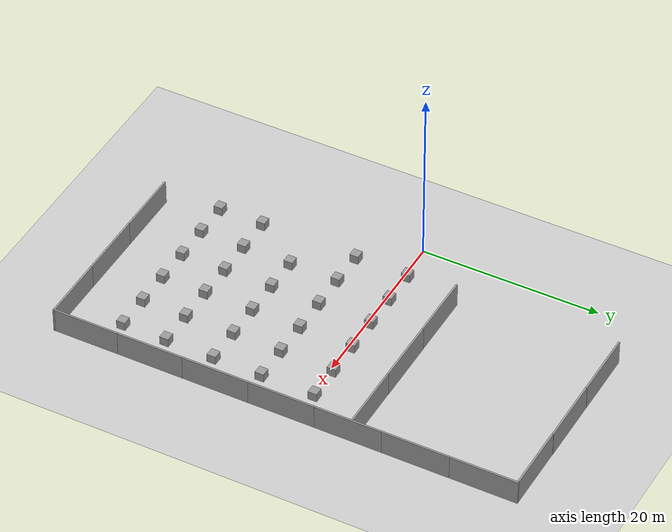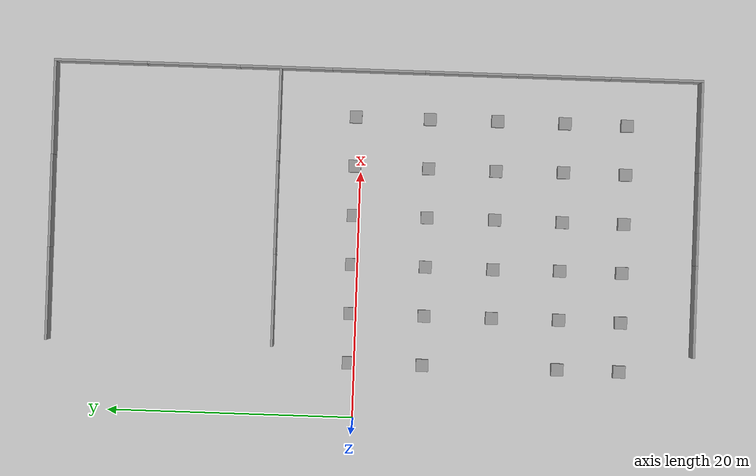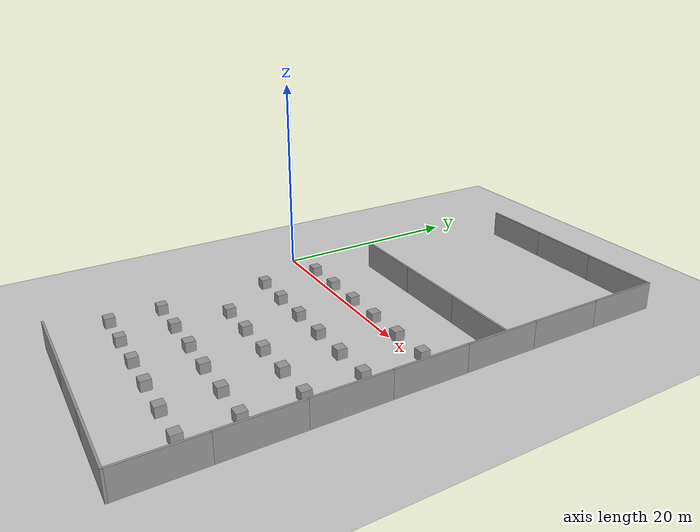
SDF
<sdf version="1.6">
 <world name="default">
  <model name="ground_plane">
   <static>1</static>
   <link name="link">
    <collision name="collision">
     <geometry><plane><normal>0 0 1</normal><size>100 100</size></plane></geometry>
     <surface>
      <contact><collide_bitmask>65535</collide_bitmask></contact>
      <friction><ode><mu>100</mu><mu2>50</mu2></ode></friction>
     </surface>
    </collision>
    <visual name="visual">
     <cast_shadows>0</cast_shadows>
     <geometry><plane><normal>0 0 1</normal><size>100 100</size></plane></geometry>
     <material>
      <script><uri>file://media/materials/scripts/gazebo.material</uri><name>Gazebo/Grey</name></script>
     </material>
    </visual>
   </link>
  </model>
  <model name="grey_wall_0">
   <static>1</static>
   <link name="link">
    <pose>0 0 1.4 0 -0 0</pose>
    <collision name="collision"><geometry><box><size>7.5 0.2 2.8</size></box></geometry></collision>
    <visual name="visual">
     <cast_shadows>0</cast_shadows>
     <geometry><box><size>7.5 0.2 2.8</size></box></geometry>
     <material>
      <script>
       <uri>model://grey_wall/materials/scripts</uri>
       <uri>model://grey_wall/materials/textures</uri>
       <name>vrc/grey_wall</name>
      </script>
     </material>
    </visual>
   </link>
   <pose>9.38698 24.904 0 0 -0 0</pose>
  </model>
  <model name="grey_wall_0_clone">
   <static>1</static>
   <link name="link">
    <pose>0 0 1.4 0 -0 0</pose>
    <collision name="collision"><geometry><box><size>7.5 0.2 2.8</size></box></geometry></collision>
    <visual name="visual">
     <cast_shadows>0</cast_shadows>
     <geometry><box><size>7.5 0.2 2.8</size></box></geometry>
     <material>
      <script>
       <uri>model://grey_wall/materials/scripts</uri>
       <uri>model://grey_wall/materials/textures</uri>
       <name>vrc/grey_wall</name>
      </script>
     </material>
    </visual>
   </link>
   <pose>16.8624 24.894 0 0 -0 0</pose>
  </model>
  <model name="grey_wall_0_clone_0">
   <static>1</static>
   <link name="link">
    <pose>0 0 1.4 0 -0 0</pose>
    <collision name="collision"><geometry><box><size>7.5 0.2 2.8</size></box></geometry></collision>
    <visual name="visual">
     <cast_shadows>0</cast_shadows>
     <geometry><box><size>7.5 0.2 2.8</size></box></geometry>
     <material>
      <script>
       <uri>model://grey_wall/materials/scripts</uri>
       <uri>model://grey_wall/materials/textures</uri>
       <name>vrc/grey_wall</name>
      </script>
     </material>
    </visual>
   </link>
   <pose>24.3535 24.8723 0 0 -0 0</pose>
  </model>
  <model name="grey_wall_0_clone_4_clone_5">
   <static>1</static>
   <link name="link">
    <pose>0 0 1.4 0 -0 0</pose>
    <collision name="collision"><geometry><box><size>7.5 0.2 2.8</size></box></geometry></collision>
    <visual name="visual">
     <cast_shadows>0</cast_shadows>
     <geometry><box><size>7.5 0.2 2.8</size></box></geometry>
     <material>
      <script>
       <uri>model://grey_wall/materials/scripts</uri>
       <uri>model://grey_wall/materials/textures</uri>
       <name>vrc/grey_wall</name>
      </script>
     </material>
    </visual>
   </link>
   <pose>28.2061 21.2247 0 0 -0 1.57</pose>
  </model>
  <model name="grey_wall_0_clone_4_clone_6">
   <static>1</static>
   <link name="link">
    <pose>0 0 1.4 0 -0 0</pose>
    <collision name="collision"><geometry><box><size>7.5 0.2 2.8</size></box></geometry></collision>
    <visual name="visual">
     <cast_shadows>0</cast_shadows>
     <geometry><box><size>7.5 0.2 2.8</size></box></geometry>
     <material>
      <script>
       <uri>model://grey_wall/materials/scripts</uri>
       <uri>model://grey_wall/materials/textures</uri>
       <name>vrc/grey_wall</name>
      </script>
     </material>
    </visual>
   </link>
   <pose>28.2061 13.7419 0 0 -0 1.57</pose>
  </model>
  <model name="grey_wall_0_clone_4_clone_7">
   <static>1</static>
   <link name="link">
    <pose>0 0 1.4 0 -0 0</pose>
    <collision name="collision"><geometry><box><size>7.5 0.2 2.8</size></box></geometry></collision>
    <visual name="visual">
     <cast_shadows>0</cast_shadows>
     <geometry><box><size>7.5 0.2 2.8</size></box></geometry>
     <material>
      <script>
       <uri>model://grey_wall/materials/scripts</uri>
       <uri>model://grey_wall/materials/textures</uri>
       <name>vrc/grey_wall</name>
      </script>
     </material>
    </visual>
   </link>
   <pose>28.2061 6.25895 0 0 -0 1.57</pose>
  </model>
  <model name="grey_wall_0_clone_4_clone_8">
   <static>1</static>
   <link name="link">
    <pose>0 0 1.4 0 -0 0</pose>
    <collision name="collision"><geometry><box><size>7.5 0.2 2.8</size></box></geometry></collision>
    <visual name="visual">
     <cast_shadows>0</cast_shadows>
     <geometry><box><size>7.5 0.2 2.8</size></box></geometry>
     <material>
      <script>
       <uri>model://grey_wall/materials/scripts</uri>
       <uri>model://grey_wall/materials/textures</uri>
       <name>vrc/grey_wall</name>
      </script>
     </material>
    </visual>
   </link>
   <pose>28.2061 -1.22394 0 0 -0 1.57</pose>
  </model>
  <model name="grey_wall_0_clone_4_clone_9">
   <static>1</static>
   <link name="link">
    <pose>0 0 1.4 0 -0 0</pose>
    <collision name="collision"><geometry><box><size>7.5 0.2 2.8</size></box></geometry></collision>
    <visual name="visual">
     <cast_shadows>0</cast_shadows>
     <geometry><box><size>7.5 0.2 2.8</size></box></geometry>
     <material>
      <script>
       <uri>model://grey_wall/materials/scripts</uri>
       <uri>model://grey_wall/materials/textures</uri>
       <name>vrc/grey_wall</name>
      </script>
     </material>
    </visual>
   </link>
   <pose>28.2061 -8.70683 0 0 -0 1.57</pose>
  </model>
  <model name="grey_wall_0_clone_4_clone_10">
   <static>1</static>
   <link name="link">
    <pose>0 0 1.4 0 -0 0</pose>
    <collision name="collision"><geometry><box><size>7.5 0.2 2.8</size></box></geometry></collision>
    <visual name="visual">
     <cast_shadows>0</cast_shadows>
     <geometry><box><size>7.5 0.2 2.8</size></box></geometry>
     <material>
      <script>
       <uri>model://grey_wall/materials/scripts</uri>
       <uri>model://grey_wall/materials/textures</uri>
       <name>vrc/grey_wall</name>
      </script>
     </material>
    </visual>
   </link>
   <pose>28.2061 -16.1897 0 0 -0 1.57</pose>
  </model>
  <model name="grey_wall_0_clone_4_clone_11">
   <static>1</static>
   <link name="link">
    <pose>0 0 1.4 0 -0 0</pose>
    <collision name="collision"><geometry><box><size>7.5 0.2 2.8</size></box></geometry></collision>
    <visual name="visual">
     <cast_shadows>0</cast_shadows>
     <geometry><box><size>7.5 0.2 2.8</size></box></geometry>
     <material>
      <script>
       <uri>model://grey_wall/materials/scripts</uri>
       <uri>model://grey_wall/materials/textures</uri>
       <name>vrc/grey_wall</name>
      </script>
     </material>
    </visual>
   </link>
   <pose>28.2061 -23.6726 0 0 -0 1.57</pose>
  </model>
  <model name="grey_wall_0_clone_0_clone">
   <static>1</static>
   <link name="link">
    <pose>0 0 1.4 0 -0 0</pose>
    <collision name="collision"><geometry><box><size>7.5 0.2 2.8</size></box></geometry></collision>
    <visual name="visual">
     <cast_shadows>0</cast_shadows>
     <geometry><box><size>7.5 0.2 2.8</size></box></geometry>
     <material>
      <script>
       <uri>model://grey_wall/materials/scripts</uri>
       <uri>model://grey_wall/materials/textures</uri>
       <name>vrc/grey_wall</name>
      </script>
     </material>
    </visual>
   </link>
   <pose>24.56 -27.3265 0 0 -0 0</pose>
  </model>
  <model name="grey_wall_0_clone_0_clone_0">
   <static>1</static>
   <link name="link">
    <pose>0 0 1.4 0 -0 0</pose>
    <collision name="collision"><geometry><box><size>7.5 0.2 2.8</size></box></geometry></collision>
    <visual name="visual">
     <cast_shadows>0</cast_shadows>
     <geometry><box><size>7.5 0.2 2.8</size></box></geometry>
     <material>
      <script>
       <uri>model://grey_wall/materials/scripts</uri>
       <uri>model://grey_wall/materials/textures</uri>
       <name>vrc/grey_wall</name>
      </script>
     </material>
    </visual>
   </link>
   <pose>17.068 -27.3265 0 0 -0 0</pose>
  </model>
  <model name="grey_wall_0_clone_0_clone_1">
   <static>1</static>
   <link name="link">
    <pose>0 0 1.4 0 -0 0</pose>
    <collision name="collision"><geometry><box><size>7.5 0.2 2.8</size></box></geometry></collision>
    <visual name="visual">
     <cast_shadows>0</cast_shadows>
     <geometry><box><size>7.5 0.2 2.8</size></box></geometry>
     <material>
      <script>
       <uri>model://grey_wall/materials/scripts</uri>
       <uri>model://grey_wall/materials/textures</uri>
       <name>vrc/grey_wall</name>
      </script>
     </material>
    </visual>
   </link>
   <pose>9.60033 -27.3265 0 0 -0 0</pose>
  </model>
  <model name="grey_wall_0_clone_0_clone_1_clone">
   <static>1</static>
   <link name="link">
    <pose>0 0 1.4 0 -0 0</pose>
    <collision name="collision"><geometry><box><size>7.5 0.2 2.8</size></box></geometry></collision>
    <visual name="visual">
     <cast_shadows>0</cast_shadows>
     <geometry><box><size>7.5 0.2 2.8</size></box></geometry>
     <material>
      <script>
       <uri>model://grey_wall/materials/scripts</uri>
       <uri>model://grey_wall/materials/textures</uri>
       <name>vrc/grey_wall</name>
      </script>
     </material>
    </visual>
   </link>
   <pose>24.4034 6.69424 0 0 -0 0</pose>
  </model>
  <model name="grey_wall_0_clone_0_clone_1_clone_0">
   <static>1</static>
   <link name="link">
    <pose>0 0 1.4 0 -0 0</pose>
    <collision name="collision"><geometry><box><size>7.5 0.2 2.8</size></box></geometry></collision>
    <visual name="visual">
     <cast_shadows>0</cast_shadows>
     <geometry><box><size>7.5 0.2 2.8</size></box></geometry>
     <material>
      <script>
       <uri>model://grey_wall/materials/scripts</uri>
       <uri>model://grey_wall/materials/textures</uri>
       <name>vrc/grey_wall</name>
      </script>
     </material>
    </visual>
   </link>
   <pose>16.8984 6.70669 0 0 -0 0</pose>
  </model>
  <model name="grey_wall_0_clone_0_clone_1_clone_1">
   <static>1</static>
   <link name="link">
    <pose>0 0 1.4 0 -0 0</pose>
    <collision name="collision"><geometry><box><size>7.5 0.2 2.8</size></box></geometry></collision>
    <visual name="visual">
     <cast_shadows>0</cast_shadows>
     <geometry><box><size>7.5 0.2 2.8</size></box></geometry>
     <material>
      <script>
       <uri>model://grey_wall/materials/scripts</uri>
       <uri>model://grey_wall/materials/textures</uri>
       <name>vrc/grey_wall</name>
      </script>
     </material>
    </visual>
   </link>
   <pose>9.41224 6.69727 0 0 -0 0</pose>
  </model>
  <model name="unit_box_7">
   <pose>4.49454 -21.521 0.499995 0 -1e-05 0</pose>
   <link name="link">
    <inertial>
     <mass>1</mass>
     <inertia>
      <ixx>0.166667</ixx>
      <ixy>0</ixy>
      <ixz>0</ixz>
      <iyy>0.166667</iyy>
      <iyz>0</iyz>
      <izz>0.166667</izz>
     </inertia>
    </inertial>
    <collision name="collision"><geometry><box><size>1 1 1</size></box></geometry></collision>
    <visual name="visual">
     <geometry><box><size>1 1 1</size></box></geometry>
     <material>
      <script><name>Gazebo/Grey</name><uri>file://media/materials/scripts/gazebo.material</uri></script>
     </material>
    </visual>
   </link>
  </model>
  <model name="unit_box_8">
   <pose>8.47788 -21.5202 0.499995 1e-05 -0 0</pose>
   <link name="link">
    <inertial>
     <mass>1</mass>
     <inertia>
      <ixx>0.166667</ixx>
      <ixy>0</ixy>
      <ixz>0</ixz>
      <iyy>0.166667</iyy>
      <iyz>0</iyz>
      <izz>0.166667</izz>
     </inertia>
    </inertial>
    <collision name="collision"><geometry><box><size>1 1 1</size></box></geometry></collision>
    <visual name="visual">
     <geometry><box><size>1 1 1</size></box></geometry>
     <material>
      <script><name>Gazebo/Grey</name><uri>file://media/materials/scripts/gazebo.material</uri></script>
     </material>
    </visual>
   </link>
  </model>
  <model name="unit_box_9">
   <pose>12.5124 -21.4922 0.499995 0 -1e-05 0</pose>
   <link name="link">
    <inertial>
     <mass>1</mass>
     <inertia>
      <ixx>0.166667</ixx>
      <ixy>0</ixy>
      <ixz>0</ixz>
      <iyy>0.166667</iyy>
      <iyz>0</iyz>
      <izz>0.166667</izz>
     </inertia>
    </inertial>
    <collision name="collision"><geometry><box><size>1 1 1</size></box></geometry></collision>
    <visual name="visual">
     <geometry><box><size>1 1 1</size></box></geometry>
     <material>
      <script><name>Gazebo/Grey</name><uri>file://media/materials/scripts/gazebo.material</uri></script>
     </material>
    </visual>
   </link>
  </model>
  <model name="unit_box_10">
   <pose>16.4927 -21.5232 0.499995 1e-05 -0 0</pose>
   <link name="link">
    <inertial>
     <mass>1</mass>
     <inertia>
      <ixx>0.166667</ixx>
      <ixy>0</ixy>
      <ixz>0</ixz>
      <iyy>0.166667</iyy>
      <iyz>0</iyz>
      <izz>0.166667</izz>
     </inertia>
    </inertial>
    <collision name="collision"><geometry><box><size>1 1 1</size></box></geometry></collision>
    <visual name="visual">
     <geometry><box><size>1 1 1</size></box></geometry>
     <material>
      <script><name>Gazebo/Grey</name><uri>file://media/materials/scripts/gazebo.material</uri></script>
     </material>
    </visual>
   </link>
  </model>
  <model name="unit_box_11">
   <pose>20.5 -21.5248 0.499995 0 -1e-05 0</pose>
   <link name="link">
    <inertial>
     <mass>1</mass>
     <inertia>
      <ixx>0.166667</ixx>
      <ixy>0</ixy>
      <ixz>0</ixz>
      <iyy>0.166667</iyy>
      <iyz>0</iyz>
      <izz>0.166667</izz>
     </inertia>
    </inertial>
    <collision name="collision"><geometry><box><size>1 1 1</size></box></geometry></collision>
    <visual name="visual">
     <geometry><box><size>1 1 1</size></box></geometry>
     <material>
      <script><name>Gazebo/Grey</name><uri>file://media/materials/scripts/gazebo.material</uri></script>
     </material>
    </visual>
   </link>
  </model>
  <model name="unit_box_12">
   <pose>24.4834 -21.524 0.499995 1e-05 -0 0</pose>
   <link name="link">
    <inertial>
     <mass>1</mass>
     <inertia>
      <ixx>0.166667</ixx>
      <ixy>0</ixy>
      <ixz>0</ixz>
      <iyy>0.166667</iyy>
      <iyz>0</iyz>
      <izz>0.166667</izz>
     </inertia>
    </inertial>
    <collision name="collision"><geometry><box><size>1 1 1</size></box></geometry></collision>
    <visual name="visual">
     <geometry><box><size>1 1 1</size></box></geometry>
     <material>
      <script><name>Gazebo/Grey</name><uri>file://media/materials/scripts/gazebo.material</uri></script>
     </material>
    </visual>
   </link>
  </model>
  <model name="unit_box_16">
   <pose>4.50169 -16.4848 0.499995 1e-05 -0 0</pose>
   <link name="link">
    <inertial>
     <mass>1</mass>
     <inertia>
      <ixx>0.166667</ixx>
      <ixy>0</ixy>
      <ixz>0</ixz>
      <iyy>0.166667</iyy>
      <iyz>0</iyz>
      <izz>0.166667</izz>
     </inertia>
    </inertial>
    <collision name="collision"><geometry><box><size>1 1 1</size></box></geometry></collision>
    <visual name="visual">
     <geometry><box><size>1 1 1</size></box></geometry>
     <material>
      <script><name>Gazebo/Grey</name><uri>file://media/materials/scripts/gazebo.material</uri></script>
     </material>
    </visual>
   </link>
  </model>
  <model name="unit_box_17">
   <pose>8.53197 -16.4871 0.499995 0 -1e-05 0</pose>
   <link name="link">
    <inertial>
     <mass>1</mass>
     <inertia>
      <ixx>0.166667</ixx>
      <ixy>0</ixy>
      <ixz>0</ixz>
      <iyy>0.166667</iyy>
      <iyz>0</iyz>
      <izz>0.166667</izz>
     </inertia>
    </inertial>
    <collision name="collision"><geometry><box><size>1 1 1</size></box></geometry></collision>
    <visual name="visual">
     <geometry><box><size>1 1 1</size></box></geometry>
     <material>
      <script><name>Gazebo/Grey</name><uri>file://media/materials/scripts/gazebo.material</uri></script>
     </material>
    </visual>
   </link>
  </model>
  <model name="unit_box_18">
   <pose>12.52 -16.4388 0.499995 1e-05 -0 0</pose>
   <link name="link">
    <inertial>
     <mass>1</mass>
     <inertia>
      <ixx>0.166667</ixx>
      <ixy>0</ixy>
      <ixz>0</ixz>
      <iyy>0.166667</iyy>
      <iyz>0</iyz>
      <izz>0.166667</izz>
     </inertia>
    </inertial>
    <collision name="collision"><geometry><box><size>1 1 1</size></box></geometry></collision>
    <visual name="visual">
     <geometry><box><size>1 1 1</size></box></geometry>
     <material>
      <script><name>Gazebo/Grey</name><uri>file://media/materials/scripts/gazebo.material</uri></script>
     </material>
    </visual>
   </link>
  </model>
  <model name="unit_box_19">
   <pose>16.4725 -16.5132 0.499995 0 -1e-05 0</pose>
   <link name="link">
    <inertial>
     <mass>1</mass>
     <inertia>
      <ixx>0.166667</ixx>
      <ixy>0</ixy>
      <ixz>0</ixz>
      <iyy>0.166667</iyy>
      <iyz>0</iyz>
      <izz>0.166667</izz>
     </inertia>
    </inertial>
    <collision name="collision"><geometry><box><size>1 1 1</size></box></geometry></collision>
    <visual name="visual">
     <geometry><box><size>1 1 1</size></box></geometry>
     <material>
      <script><name>Gazebo/Grey</name><uri>file://media/materials/scripts/gazebo.material</uri></script>
     </material>
    </visual>
   </link>
  </model>
  <model name="unit_box_20">
   <pose>20.5278 -16.4744 0.499995 1e-05 -0 0</pose>
   <link name="link">
    <inertial>
     <mass>1</mass>
     <inertia>
      <ixx>0.166667</ixx>
      <ixy>0</ixy>
      <ixz>0</ixz>
      <iyy>0.166667</iyy>
      <iyz>0</iyz>
      <izz>0.166667</izz>
     </inertia>
    </inertial>
    <collision name="collision"><geometry><box><size>1 1 1</size></box></geometry></collision>
    <visual name="visual">
     <geometry><box><size>1 1 1</size></box></geometry>
     <material>
      <script><name>Gazebo/Grey</name><uri>file://media/materials/scripts/gazebo.material</uri></script>
     </material>
    </visual>
   </link>
  </model>
  <model name="unit_box_21">
   <pose>24.5109 -16.4733 0.499995 0 -1e-05 0</pose>
   <link name="link">
    <inertial>
     <mass>1</mass>
     <inertia>
      <ixx>0.166667</ixx>
      <ixy>0</ixy>
      <ixz>0</ixz>
      <iyy>0.166667</iyy>
      <iyz>0</iyz>
      <izz>0.166667</izz>
     </inertia>
    </inertial>
    <collision name="collision"><geometry><box><size>1 1 1</size></box></geometry></collision>
    <visual name="visual">
     <geometry><box><size>1 1 1</size></box></geometry>
     <material>
      <script><name>Gazebo/Grey</name><uri>file://media/materials/scripts/gazebo.material</uri></script>
     </material>
    </visual>
   </link>
  </model>
  <model name="unit_box_25">
   <pose>8.49594 -11.0187 0.499995 1e-05 -0 0</pose>
   <link name="link">
    <inertial>
     <mass>1</mass>
     <inertia>
      <ixx>0.166667</ixx>
      <ixy>0</ixy>
      <ixz>0</ixz>
      <iyy>0.166667</iyy>
      <iyz>0</iyz>
      <izz>0.166667</izz>
     </inertia>
    </inertial>
    <collision name="collision"><geometry><box><size>1 1 1</size></box></geometry></collision>
    <visual name="visual">
     <geometry><box><size>1 1 1</size></box></geometry>
     <material>
      <script><name>Gazebo/Grey</name><uri>file://media/materials/scripts/gazebo.material</uri></script>
     </material>
    </visual>
   </link>
  </model>
  <model name="unit_box_26">
   <pose>12.452 -11.0112 0.499995 0 -1e-05 0</pose>
   <link name="link">
    <inertial>
     <mass>1</mass>
     <inertia>
      <ixx>0.166667</ixx>
      <ixy>0</ixy>
      <ixz>0</ixz>
      <iyy>0.166667</iyy>
      <iyz>0</iyz>
      <izz>0.166667</izz>
     </inertia>
    </inertial>
    <collision name="collision"><geometry><box><size>1 1 1</size></box></geometry></collision>
    <visual name="visual">
     <geometry><box><size>1 1 1</size></box></geometry>
     <material>
      <script><name>Gazebo/Grey</name><uri>file://media/materials/scripts/gazebo.material</uri></script>
     </material>
    </visual>
   </link>
  </model>
  <model name="unit_box_27">
   <pose>16.4928 -11.0213 0.499995 1e-05 -0 0</pose>
   <link name="link">
    <inertial>
     <mass>1</mass>
     <inertia>
      <ixx>0.166667</ixx>
      <ixy>0</ixy>
      <ixz>0</ixz>
      <iyy>0.166667</iyy>
      <iyz>0</iyz>
      <izz>0.166667</izz>
     </inertia>
    </inertial>
    <collision name="collision"><geometry><box><size>1 1 1</size></box></geometry></collision>
    <visual name="visual">
     <geometry><box><size>1 1 1</size></box></geometry>
     <material>
      <script><name>Gazebo/Grey</name><uri>file://media/materials/scripts/gazebo.material</uri></script>
     </material>
    </visual>
   </link>
  </model>
  <model name="unit_box_28">
   <pose>20.4487 -10.9958 0.499995 0 -1e-05 0</pose>
   <link name="link">
    <inertial>
     <mass>1</mass>
     <inertia>
      <ixx>0.166667</ixx>
      <ixy>0</ixy>
      <ixz>0</ixz>
      <iyy>0.166667</iyy>
      <iyz>0</iyz>
      <izz>0.166667</izz>
     </inertia>
    </inertial>
    <collision name="collision"><geometry><box><size>1 1 1</size></box></geometry></collision>
    <visual name="visual">
     <geometry><box><size>1 1 1</size></box></geometry>
     <material>
      <script><name>Gazebo/Grey</name><uri>file://media/materials/scripts/gazebo.material</uri></script>
     </material>
    </visual>
   </link>
  </model>
  <model name="unit_box_29">
   <pose>24.5125 -10.9994 0.499995 1e-05 -0 0</pose>
   <link name="link">
    <inertial>
     <mass>1</mass>
     <inertia>
      <ixx>0.166667</ixx>
      <ixy>0</ixy>
      <ixz>0</ixz>
      <iyy>0.166667</iyy>
      <iyz>0</iyz>
      <izz>0.166667</izz>
     </inertia>
    </inertial>
    <collision name="collision"><geometry><box><size>1 1 1</size></box></geometry></collision>
    <visual name="visual">
     <geometry><box><size>1 1 1</size></box></geometry>
     <material>
      <script><name>Gazebo/Grey</name><uri>file://media/materials/scripts/gazebo.material</uri></script>
     </material>
    </visual>
   </link>
  </model>
  <model name="unit_box_33">
   <pose>4.48704 -5.50507 0.499995 1e-05 -0 0</pose>
   <link name="link">
    <inertial>
     <mass>1</mass>
     <inertia>
      <ixx>0.166667</ixx>
      <ixy>0</ixy>
      <ixz>0</ixz>
      <iyy>0.166667</iyy>
      <iyz>0</iyz>
      <izz>0.166667</izz>
     </inertia>
    </inertial>
    <collision name="collision"><geometry><box><size>1 1 1</size></box></geometry></collision>
    <visual name="visual">
     <geometry><box><size>1 1 1</size></box></geometry>
     <material>
      <script><name>Gazebo/Grey</name><uri>file://media/materials/scripts/gazebo.material</uri></script>
     </material>
    </visual>
   </link>
  </model>
  <model name="unit_box_34">
   <pose>8.49112 -5.53439 0.499995 0 -1e-05 0</pose>
   <link name="link">
    <inertial>
     <mass>1</mass>
     <inertia>
      <ixx>0.166667</ixx>
      <ixy>0</ixy>
      <ixz>0</ixz>
      <iyy>0.166667</iyy>
      <iyz>0</iyz>
      <izz>0.166667</izz>
     </inertia>
    </inertial>
    <collision name="collision"><geometry><box><size>1 1 1</size></box></geometry></collision>
    <visual name="visual">
     <geometry><box><size>1 1 1</size></box></geometry>
     <material>
      <script><name>Gazebo/Grey</name><uri>file://media/materials/scripts/gazebo.material</uri></script>
     </material>
    </visual>
   </link>
  </model>
  <model name="unit_box_35">
   <pose>12.4817 -5.50737 0.499995 1e-05 -0 0</pose>
   <link name="link">
    <inertial>
     <mass>1</mass>
     <inertia>
      <ixx>0.166667</ixx>
      <ixy>0</ixy>
      <ixz>0</ixz>
      <iyy>0.166667</iyy>
      <iyz>0</iyz>
      <izz>0.166667</izz>
     </inertia>
    </inertial>
    <collision name="collision"><geometry><box><size>1 1 1</size></box></geometry></collision>
    <visual name="visual">
     <geometry><box><size>1 1 1</size></box></geometry>
     <material>
      <script><name>Gazebo/Grey</name><uri>file://media/materials/scripts/gazebo.material</uri></script>
     </material>
    </visual>
   </link>
  </model>
  <model name="unit_box_36">
   <pose>16.4884 -5.50948 0.499995 0 -1e-05 0</pose>
   <link name="link">
    <inertial>
     <mass>1</mass>
     <inertia>
      <ixx>0.166667</ixx>
      <ixy>0</ixy>
      <ixz>0</ixz>
      <iyy>0.166667</iyy>
      <iyz>0</iyz>
      <izz>0.166667</izz>
     </inertia>
    </inertial>
    <collision name="collision"><geometry><box><size>1 1 1</size></box></geometry></collision>
    <visual name="visual">
     <geometry><box><size>1 1 1</size></box></geometry>
     <material>
      <script><name>Gazebo/Grey</name><uri>file://media/materials/scripts/gazebo.material</uri></script>
     </material>
    </visual>
   </link>
  </model>
  <model name="unit_box_37">
   <pose>20.4763 -5.50967 0.499995 1e-05 -0 0</pose>
   <link name="link">
    <inertial>
     <mass>1</mass>
     <inertia>
      <ixx>0.166667</ixx>
      <ixy>0</ixy>
      <ixz>0</ixz>
      <iyy>0.166667</iyy>
      <iyz>0</iyz>
      <izz>0.166667</izz>
     </inertia>
    </inertial>
    <collision name="collision"><geometry><box><size>1 1 1</size></box></geometry></collision>
    <visual name="visual">
     <geometry><box><size>1 1 1</size></box></geometry>
     <material>
      <script><name>Gazebo/Grey</name><uri>file://media/materials/scripts/gazebo.material</uri></script>
     </material>
    </visual>
   </link>
  </model>
  <model name="unit_box_38">
   <pose>24.483 -5.51178 0.499995 0 -1e-05 0</pose>
   <link name="link">
    <inertial>
     <mass>1</mass>
     <inertia>
      <ixx>0.166667</ixx>
      <ixy>0</ixy>
      <ixz>0</ixz>
      <iyy>0.166667</iyy>
      <iyz>0</iyz>
      <izz>0.166667</izz>
     </inertia>
    </inertial>
    <collision name="collision"><geometry><box><size>1 1 1</size></box></geometry></collision>
    <visual name="visual">
     <geometry><box><size>1 1 1</size></box></geometry>
     <material>
      <script><name>Gazebo/Grey</name><uri>file://media/materials/scripts/gazebo.material</uri></script>
     </material>
    </visual>
   </link>
  </model>
  <model name="unit_box_42">
   <pose>4.49693 0.491789 0.499995 -1e-05 -0 -0</pose>
   <link name="link">
    <inertial>
     <mass>1</mass>
     <inertia>
      <ixx>0.166667</ixx>
      <ixy>0</ixy>
      <ixz>0</ixz>
      <iyy>0.166667</iyy>
      <iyz>0</iyz>
      <izz>0.166667</izz>
     </inertia>
    </inertial>
    <collision name="collision"><geometry><box><size>1 1 1</size></box></geometry></collision>
    <visual name="visual">
     <geometry><box><size>1 1 1</size></box></geometry>
     <material>
      <script><name>Gazebo/Grey</name><uri>file://media/materials/scripts/gazebo.material</uri></script>
     </material>
    </visual>
   </link>
  </model>
  <model name="unit_box_43">
   <pose>8.50365 0.489738 0.499995 0 1e-05 0</pose>
   <link name="link">
    <inertial>
     <mass>1</mass>
     <inertia>
      <ixx>0.166667</ixx>
      <ixy>0</ixy>
      <ixz>0</ixz>
      <iyy>0.166667</iyy>
      <iyz>0</iyz>
      <izz>0.166667</izz>
     </inertia>
    </inertial>
    <collision name="collision"><geometry><box><size>1 1 1</size></box></geometry></collision>
    <visual name="visual">
     <geometry><box><size>1 1 1</size></box></geometry>
     <material>
      <script><name>Gazebo/Grey</name><uri>file://media/materials/scripts/gazebo.material</uri></script>
     </material>
    </visual>
   </link>
  </model>
  <model name="unit_box_44">
   <pose>12.4915 0.489526 0.499995 -1e-05 -0 -0</pose>
   <link name="link">
    <inertial>
     <mass>1</mass>
     <inertia>
      <ixx>0.166667</ixx>
      <ixy>0</ixy>
      <ixz>0</ixz>
      <iyy>0.166667</iyy>
      <iyz>0</iyz>
      <izz>0.166667</izz>
     </inertia>
    </inertial>
    <collision name="collision"><geometry><box><size>1 1 1</size></box></geometry></collision>
    <visual name="visual">
     <geometry><box><size>1 1 1</size></box></geometry>
     <material>
      <script><name>Gazebo/Grey</name><uri>file://media/materials/scripts/gazebo.material</uri></script>
     </material>
    </visual>
   </link>
  </model>
  <model name="unit_box_45">
   <pose>16.4785 0.489591 0.499995 0 1e-05 0</pose>
   <link name="link">
    <inertial>
     <mass>1</mass>
     <inertia>
      <ixx>0.166667</ixx>
      <ixy>0</ixy>
      <ixz>0</ixz>
      <iyy>0.166667</iyy>
      <iyz>0</iyz>
      <izz>0.166667</izz>
     </inertia>
    </inertial>
    <collision name="collision"><geometry><box><size>1 1 1</size></box></geometry></collision>
    <visual name="visual">
     <geometry><box><size>1 1 1</size></box></geometry>
     <material>
      <script><name>Gazebo/Grey</name><uri>file://media/materials/scripts/gazebo.material</uri></script>
     </material>
    </visual>
   </link>
  </model>
  <model name="unit_box_46">
   <pose>20.4856 0.490641 0.499995 -1e-05 -0 0</pose>
   <link name="link">
    <inertial>
     <mass>1</mass>
     <inertia>
      <ixx>0.166667</ixx>
      <ixy>0</ixy>
      <ixz>0</ixz>
      <iyy>0.166667</iyy>
      <iyz>0</iyz>
      <izz>0.166667</izz>
     </inertia>
    </inertial>
    <collision name="collision"><geometry><box><size>1 1 1</size></box></geometry></collision>
    <visual name="visual">
     <geometry><box><size>1 1 1</size></box></geometry>
     <material>
      <script><name>Gazebo/Grey</name><uri>file://media/materials/scripts/gazebo.material</uri></script>
     </material>
    </visual>
   </link>
  </model>
  <model name="unit_box_47">
   <pose>24.4848 0.514884 0.5 0 -0 0</pose>
   <link name="link">
    <inertial>
     <mass>1</mass>
     <inertia>
      <ixx>0.166667</ixx>
      <ixy>0</ixy>
      <ixz>0</ixz>
      <iyy>0.166667</iyy>
      <iyz>0</iyz>
      <izz>0.166667</izz>
     </inertia>
    </inertial>
    <collision name="collision"><geometry><box><size>1 1 1</size></box></geometry></collision>
    <visual name="visual">
     <geometry><box><size>1 1 1</size></box></geometry>
     <material>
      <script><name>Gazebo/Grey</name><uri>file://media/materials/scripts/gazebo.material</uri></script>
     </material>
    </visual>
   </link>
  </model>
 </world>
</sdf>
